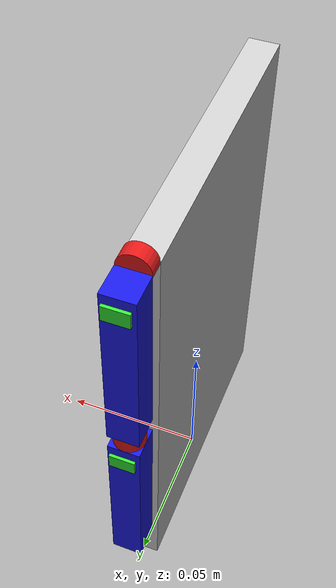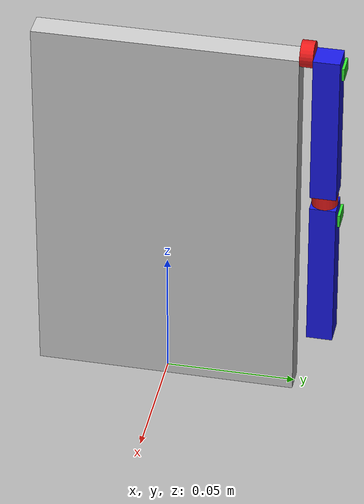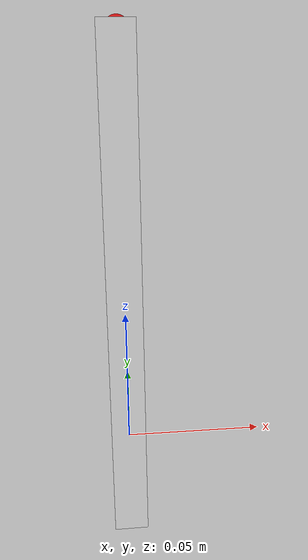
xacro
<?xml version="1.0"  encoding="utf-8"?>

<robot name="human_model" xmlns:xacro="http://www.ros.org/wiki/xacro">

  <link name="world"/>

  <!-- model to world -->
  <joint name="world_joint" type="fixed">
    <origin xyz="0 0 0.075" rpy="0 0 0"/>
    <parent link="world"/>
    <child link="base"/>
  </joint>

  <!-- base link -->
  <link name="base">
    <collision>
      <origin xyz="0 0 0" rpy="0 0 0"/>
      <geometry>
        <box size="0.01 0.1 0.15"/>
      </geometry>
    </collision>

    <visual>
      <origin xyz="0 0 0" rpy="0 0 0"/>
      <geometry>
        <box size="0.01 0.1 0.15"/>
      </geometry>
      <material name="grey"/>
    </visual>

    <inertial>
      <mass value="1e-5" />
      <origin xyz="0 0 0" rpy="0 0 0"/>
      <inertia ixx="1e-6" ixy="0" ixz="0" iyy="1e-6" iyz="0" izz="1e-6" />
    </inertial>
  </link>

  <!-- base to shoulder -->
  <joint name="shoulder" type="revolute">
    <origin xyz="0 0.055 0.0755" rpy="0 0 0"/>
    <axis xyz="0 1 0"/>
    <parent link="base"/>
    <child link="shoulder_disk"/>

    <limit effort="30" velocity="1.0" lower="0" upper="3.14150" />
  </joint>

  <!-- shoulder -->
  <link name="shoulder_disk">
    <visual>
      <origin xyz="0 -0.0025 0" rpy="1.57079632679 0 0"/>
      <geometry>
        <cylinder radius="0.005" length="0.005"/>
      </geometry>
      <material name="red"/>
    </visual>

    <inertial>
      <mass value="1e-5" />
      <origin xyz="0 -0.0025 0" rpy="1.57079632679 0 0"/>
      <inertia ixx="1e-6" ixy="0" ixz="0" iyy="1e-6" iyz="0" izz="1e-6" />
    </inertial>
    <pose xyz="0 0 0" rpy="1.1517 0 0"/>
  </link>

  <!-- shoulder to arm -->
  <joint name="shoulder2" type="revolute">
    <origin xyz="0 0.005 0" rpy="0 0 0"/>
    <axis xyz="1 0 0"/>
    <parent link="shoulder_disk"/>
    <child link="upper_arm"/>

    <limit effort="30" velocity="1.0" lower="0" upper="3.14150" />
  </joint>

  <!-- upper arm -->
  <link name="upper_arm">
    <collision>
      <origin xyz="0 0 -0.03" rpy="0 0 0"/>
      <geometry>
        <box size="0.01 0.01 0.06"/>
      </geometry>
    </collision>

    <visual>
      <origin xyz="0 0 -0.03" rpy="0 0 0"/>
      <geometry>
        <box size="0.01 0.01 0.06"/>
      </geometry>
      <material name="blue"/>
    </visual>

    <inertial>
      <mass value="1e-5" />
      <origin xyz="0 0 -0.03" rpy="0 0 0"/>
      <inertia ixx="1e-6" ixy="0" ixz="0" iyy="1e-6" iyz="0" izz="1e-6" />
    </inertial>
  </link>

  <!-- upper arm to elbow -->
  <joint name="elbow" type="revolute">
    <origin xyz="0 0 -0.06" rpy="0 0 0"/>
    <axis xyz="0 0 1"/>
    <parent link="upper_arm"/>
    <child link="elbow_disk"/>

    <limit effort="30" velocity="1.0" lower="0" upper="3.14150" />
  </joint>

  <!-- elbow -->
  <link name="elbow_disk">
    <visual>
      <origin xyz="0 0 -0.0025" rpy="0 0 0"/>
      <geometry>
        <cylinder radius="0.005" length="0.005"/>
      </geometry>
      <material name="red"/>
    </visual>

    <inertial>
      <mass value="1e-5" />
      <origin xyz="0 0 -0.0025" rpy="0 0 0"/>
      <inertia ixx="1e-6" ixy="0" ixz="0" iyy="1e-6" iyz="0" izz="1e-6" />
    </inertial>
  </link>

<!-- elbow to arm -->
  <joint name="elbow2" type="revolute">
    <origin xyz="0 0 -0.005" rpy="0 0 0"/>
    <axis xyz="1 0 0"/>
    <parent link="elbow_disk"/>
    <child link="lower_arm"/>

    <limit effort="30" velocity="1.0" lower="0" upper="3.14150" />
  </joint>

  <!-- lower arm -->
  <link name="lower_arm">
    <collision>
      <origin xyz="0 0 -0.03" rpy="0 0 0"/>
      <geometry>
        <box size="0.01 0.01 0.06"/>
      </geometry>
    </collision>

    <visual>
      <origin xyz="0 0 -0.03" rpy="0 0 0"/>
      <geometry>
        <box size="0.01 0.01 0.06"/>
      </geometry>
      <material name="blue"/>
    </visual>

    <inertial>
      <mass value="1e-5" />
      <origin xyz="0 0 -0.03" rpy="0 0 0"/>
      <inertia ixx="1e-6" ixy="0" ixz="0" iyy="1e-6" iyz="0" izz="1e-6" />
    </inertial>
  </link>

  <!-- imu to upper arm -->
  <joint name="imu_upper_arm" type="fixed">
    <origin xyz="0 0.006 -0.005" rpy="0 0 0"/>
    <parent link="upper_arm"/>
    <child link="imu_upper"/>
  </joint>

  <!-- imu -->
  <link name="imu_upper">
    <collision>
      <origin xyz="0 0 0" rpy="0 0 0"/>
      <geometry>
        <box size="0.008 0.001 0.005"/>
      </geometry>
    </collision>

    <visual>
      <origin xyz="0 0 0" rpy="0 0 0"/>
      <geometry>
        <box size="0.008 0.001 0.005"/>
      </geometry>
      <material name="green"/>
    </visual>

    <inertial>
      <mass value="1e-5" />
      <origin xyz="0 0 0" rpy="0 0 0"/>
      <inertia ixx="1e-6" ixy="0" ixz="0" iyy="1e-6" iyz="0" izz="1e-6" />
    </inertial>
  </link>

  <!-- imu to lower arm -->
  <joint name="imu_lower_arm" type="fixed">
    <origin xyz="0 0.006 -0.005" rpy="0 0 0"/>
    <parent link="lower_arm"/>
    <child link="imu_lower"/>
  </joint>

  <!-- imu -->
  <link name="imu_lower">
    <collision>
      <origin xyz="0 0 0" rpy="0 0 0"/>
      <geometry>
        <box size="0.008 0.001 0.005"/>
      </geometry>
    </collision>

    <visual>
      <origin xyz="0 0 0" rpy="0 0 0"/>
      <geometry>
        <box size="0.008 0.001 0.005"/>
      </geometry>
      <material name="green"/>
    </visual>

    <inertial>
      <mass value="1e-5" />
      <origin xyz="0 0 0" rpy="0 0 0"/>
      <inertia ixx="1e-6" ixy="0" ixz="0" iyy="1e-6" iyz="0" izz="1e-6" />
    </inertial>
  </link>

  <!-- Gazebo Plugins -->
  <gazebo reference="imu_upper">
    <gravity>true</gravity>
    <sensor name="imu_sensor" type="imu">
      <always_on>true</always_on>
      <update_rate>100</update_rate>
      <visualize>true</visualize>
      <topic>__default_topic__</topic>
      <plugin filename="libgazebo_ros_imu_sensor.so" name="imu_plugin">
        <topicName>imu_upper</topicName>
        <bodyName>imu_upper</bodyName>
        <updateRateHZ>10.0</updateRateHZ>
        <gaussianNoise>0.0</gaussianNoise>
        <xyzOffset>0 0 0</xyzOffset>
        <rpyOffset>0 0 0</rpyOffset>
        <frameName>imu_upper</frameName>
      </plugin>
      <pose>0 0 0 0 0 0</pose>
    </sensor>
  </gazebo>

  <gazebo reference="imu_lower">
    <gravity>true</gravity>
    <sensor name="imu_sensor" type="imu">
      <always_on>true</always_on>
      <update_rate>100</update_rate>
      <visualize>true</visualize>
      <topic>__default_topic__</topic>
      <plugin filename="libgazebo_ros_imu_sensor.so" name="imu_plugin">
        <topicName>imu_lower</topicName>
        <bodyName>imu_lower</bodyName>
        <updateRateHZ>10.0</updateRateHZ>
        <gaussianNoise>0.0</gaussianNoise>
        <xyzOffset>0 0 0</xyzOffset>
        <rpyOffset>0 0 0</rpyOffset>
        <frameName>imu_lower</frameName>
      </plugin>
      <pose>0 0 0 0 0 0</pose>
    </sensor>
  </gazebo>

  <!-- Colors -->
  <material name="blue">
    <color rgba="0.1 0.1 0.9 1"/>
  </material>

  <material name="grey">
    <color rgba="0.8 0.8 0.8 1"/>
  </material>

  <material name="red">
    <color rgba="0.9 0.1 0.1 1"/>
  </material>

  <material name="green">
    <color rgba="0.2 0.9 0.2 1"/>
  </material>

</robot>
